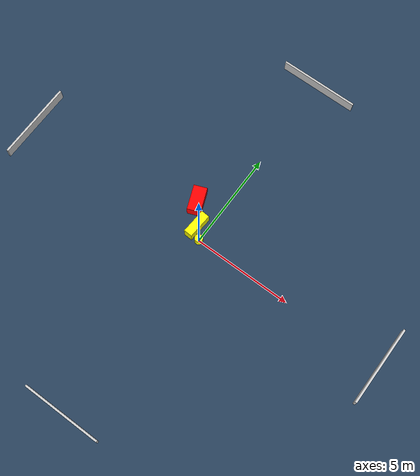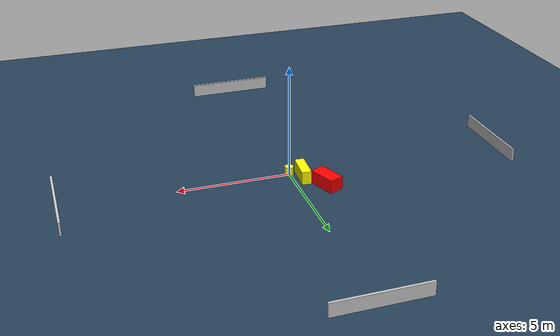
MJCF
<?xml version="1.0" ?>
<mujoco model="generated_environment">
  <option timestep="0.01" integrator="RK4" cone="elliptic"/>
  <default>
    <geom density="1"/>
  </default>
  <asset>
    <texture builtin="gradient" height="3072" name="skybox" rgb1="0.3 0.5 0.7" rgb2="0 0 0" type="skybox" width="512"/>
    <texture builtin="checker" height="300" name="groundplane" rgb1="0.2 0.3 0.4" rgb2="0.1 0.2 0.3" type="2d" width="300"/>
    <material name="groundplane" reflectance="0.2" texrepeat="5 5" texture="groundplane"/>
  </asset>
  <worldbody>
    <light dir="0 0 -1" directional="true" pos="0 0 1.5"/>
    <geom condim="3" friction="0.5 0.005 0.001" material="groundplane" name="floor" pos="0 0 0" size="0 0 0.05" type="plane"/>
    <body name="walls">
      <geom name="wall_1" condim="4" pos="-10.0 0.0 0.3" rgba="0.800000011920929 0.800000011920929 0.800000011920929 1.0" size="0.05 2.0 0.3" type="box"/>
      <geom name="wall_2" condim="4" pos="10.0 0.0 0.3" rgba="0.800000011920929 0.800000011920929 0.800000011920929 1.0" size="0.05 2.0 0.3" type="box"/>
      <geom name="wall_3" condim="4" pos="0.0 -10.0 0.3" rgba="0.800000011920929 0.800000011920929 0.800000011920929 1.0" size="2.0 0.05 0.3" type="box"/>
      <geom name="wall_4" condim="4" pos="0.0 10.0 0.3" rgba="0.800000011920929 0.800000011920929 0.800000011920929 1.0" size="2.0 0.05 0.3" type="box"/>
    </body>
    <body name="robot">
      <joint name="joint_x" type="slide" pos="0 0 0" axis="1 0 0"/>
      <joint name="joint_y" type="slide" pos="0 0 0" axis="0 1 0"/>
      <geom name="robot" type="cylinder" pos="0.0 0.0 0.2" size="0.2 0.2 0.0" mass="5.0" friction="1.0 0.005 0.0001" condim="4" rgba="1.0 1.0 0.0 1.0"/>
    </body>
    <body name="obstacle_1_movable">
      <geom name="obstacle_1_movable" condim="4" pos="-0.4701109062551095 0.4754998442376789 0.3" euler="0 0 176.0855631473199" friction="0.0 0.005 0.001" rgba="1.0 1.0 0.0 1.0" size="0.21440606160447026 0.6356620268641082 0.3" type="box" mass="0.1"/>
      <joint type="free"/>
    </body>
    <body name="obstacle_2_static">
      <geom name="obstacle_2_static" condim="4" pos="-1.198876998161449 1.4886192161527885 0.3" euler="0 0 291.447729631968" friction="0.0 0.005 0.001" rgba="1.0 0.0 0.0 1.0" size="0.6295325704328298 0.3351643806237138 0.3" type="box"/>
    </body>
  </worldbody>
  <actuator>
    <motor name="actuator_x" joint="joint_x" gear="1" ctrlrange="-1 1"/>
    <motor name="actuator_y" joint="joint_y" gear="1" ctrlrange="-1 1"/>
  </actuator>
</mujoco>
